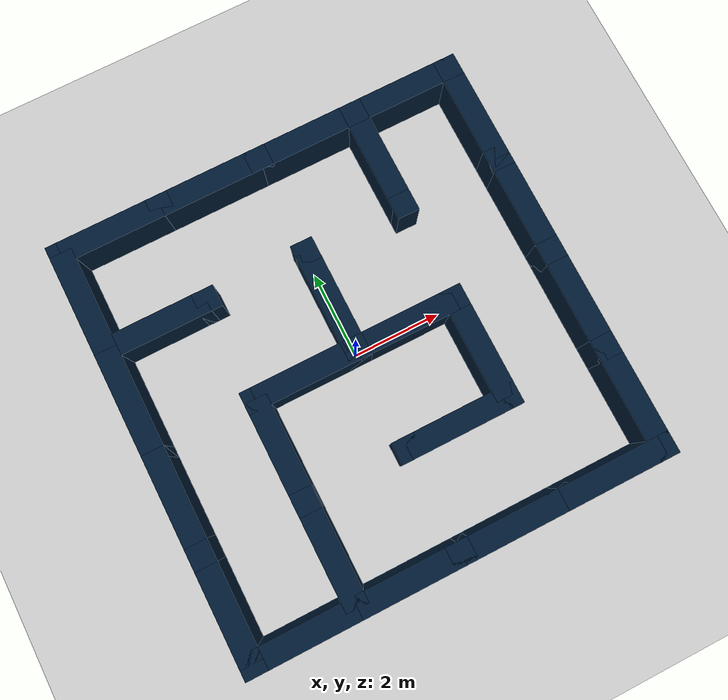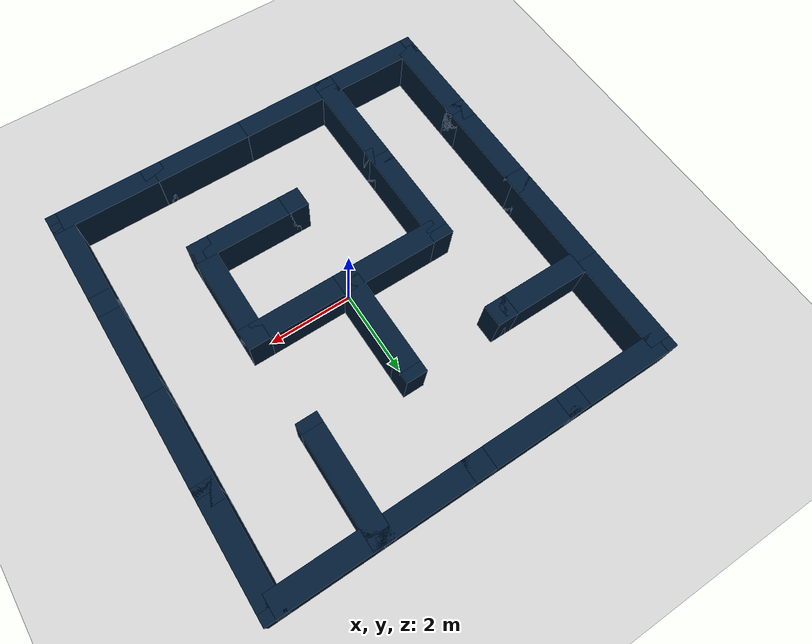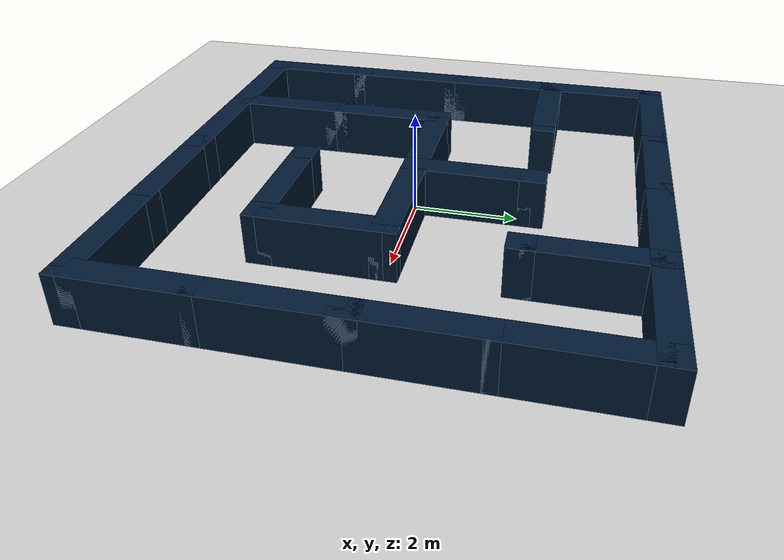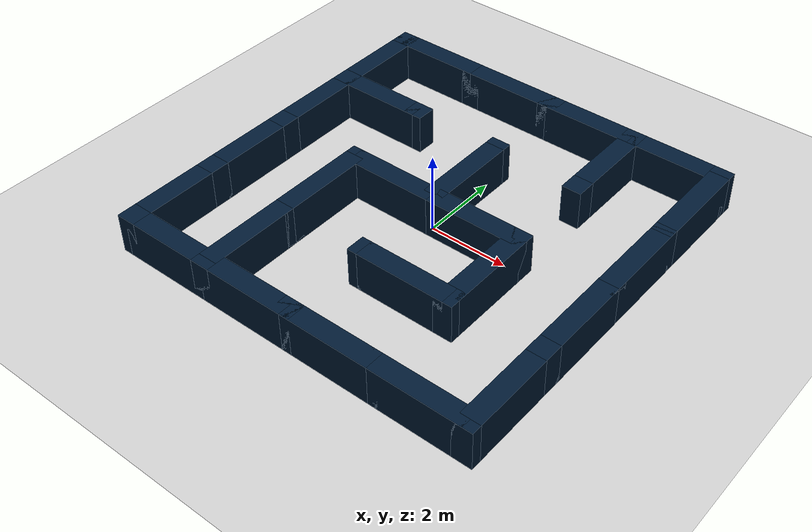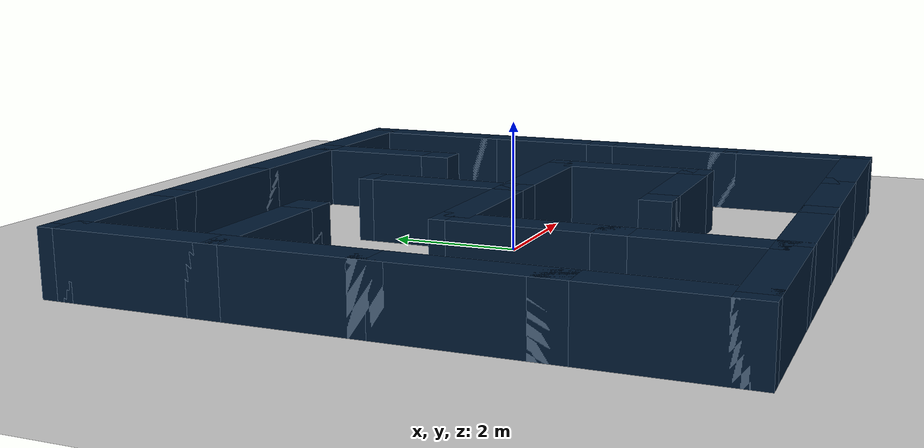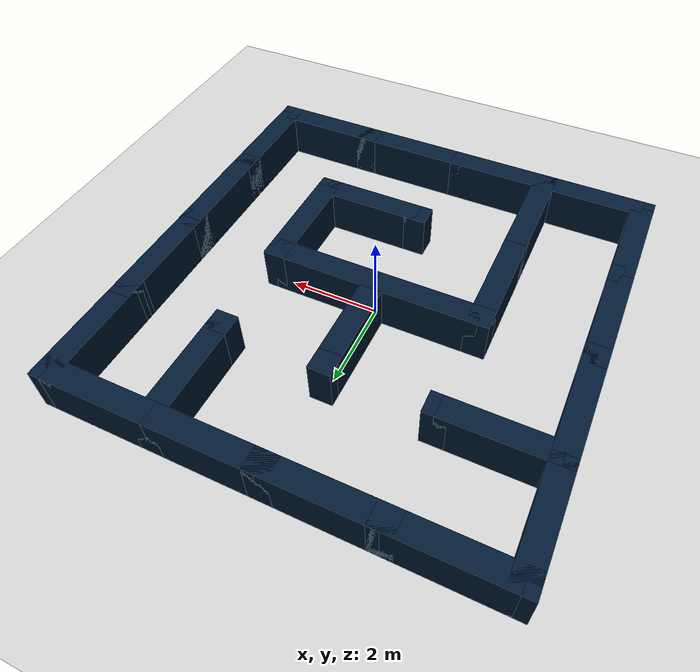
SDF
<?xml version="1.0"?>
<sdf version='1.8'>
    <world name='maze_4x4'>
        <physics name='1ms' type='ignored'>
            <max_step_size>0.003</max_step_size>
            <real_time_factor>1</real_time_factor>
            <real_time_update_rate>1000</real_time_update_rate>
        </physics>

        <!-- Plugins -->
        <plugin name="gz::sim::systems::Physics" filename="gz-sim-physics-system" />
        <plugin name="gz::sim::systems::UserCommands" filename="gz-sim-user-commands-system" />
        <plugin name="gz::sim::systems::SceneBroadcaster" filename="gz-sim-scene-broadcaster-system" />
        <plugin name="gz::sim::systems::Contact" filename="gz-sim-contact-system" />
        <plugin name="gz::sim::systems::Sensors" filename="gz-sim-sensors-system">
            <render_engine>ogre2</render_engine>
        </plugin>

        <gui fullscreen="0">
            <camera name="user_camera">
                <pose>0.0 0.0 13.80 0 1.20 0</pose>
                <view_controller>orbit</view_controller>
            </camera>
        </gui>

        <light name='sun' type='directional'>
            <cast_shadows>1</cast_shadows>
            <pose>0 0 40 0 -0 0</pose>
            <diffuse>0.8 0.8 0.8 1</diffuse>
            <specular>0.2 0.2 0.2 1</specular>
            <attenuation>
                <range>4000</range>
                <constant>0.90000000000000002</constant>
                <linear>0.01</linear>
                <quadratic>0.001</quadratic>
            </attenuation>
            <direction>-0.5 0.1 -0.9</direction>
            <spot>
                <inner_angle>0</inner_angle>
                <outer_angle>0</outer_angle>
                <falloff>0</falloff>
            </spot>
        </light>

        <gravity>0 0 -9.8</gravity>
        <magnetic_field>6e-06 2.3e-05 -4.2e-05</magnetic_field>
        <atmosphere type='adiabatic' />

        <scene>
            <ambient>0.4 0.4 0.4 1</ambient>
            <background>0.7 0.7 0.7 1</background>
            <shadows>1</shadows>
        </scene>

        <model name='ground_plane'>
            <static>1</static>
            <link name='link'>
                <collision name='collision'>
                    <geometry>
                        <plane>
                            <normal>0 0 1</normal>
                            <size>18.40 18.40</size>
                        </plane>
                    </geometry>
                    <surface>
                        <friction>
                            <ode />
                        </friction>
                        <bounce />
                        <contact />
                    </surface>
                </collision>
                <visual name='visual'>
                    <geometry>
                        <plane>
                            <normal>0 0 1</normal>
                            <size>18.40 18.40</size>
                        </plane>
                    </geometry>
                    <material>
                        <ambient>0.8 0.8 0.8 1</ambient>
                        <diffuse>0.8 0.8 0.8 1</diffuse>
                        <specular>0.8 0.8 0.8 1</specular>
                    </material>
                    <plugin name='__default__' filename='__default__' />
                </visual>
            </link>
            <plugin name='__default__' filename='__default__' />
            <pose>0 0 0 0 -0 0</pose>
        </model>

        <model name='obstacles'>
            <pose>0 0 0.50 0 0 0</pose>
            <static>true</static>
        <link name='corner_block_1'>
            <pose>-4.60 -4.60 0 0 0 0</pose>
            <static>true</static>
            <collision name='corner_block_1_collision'>
                <geometry>
                    <box>
                        <size>0.50 0.50 1.00</size>
                    </box>
                </geometry>
            </collision>
            <visual name='corner_block_1_visual'>
                <geometry>
                    <box>
                        <size>0.50 0.50 1.00</size>
                    </box>
                </geometry>
                <material>
                    <ambient>0.1 0.1 0.1 1</ambient>
                    <diffuse>0 0.1 0.2 1</diffuse>
                    <specular>0 0.01 0.05 1</specular>
                </material>
            </visual>
        </link>
        <link name='corner_block_2'>
            <pose>-2.30 -4.60 0 0 0 0</pose>
            <static>true</static>
            <collision name='corner_block_2_collision'>
                <geometry>
                    <box>
                        <size>0.50 0.50 1.00</size>
                    </box>
                </geometry>
            </collision>
            <visual name='corner_block_2_visual'>
                <geometry>
                    <box>
                        <size>0.50 0.50 1.00</size>
                    </box>
                </geometry>
                <material>
                    <ambient>0.1 0.1 0.1 1</ambient>
                    <diffuse>0 0.1 0.2 1</diffuse>
                    <specular>0 0.01 0.05 1</specular>
                </material>
            </visual>
        </link>
        <link name='corner_block_3'>
            <pose>0.00 -4.60 0 0 0 0</pose>
            <static>true</static>
            <collision name='corner_block_3_collision'>
                <geometry>
                    <box>
                        <size>0.50 0.50 1.00</size>
                    </box>
                </geometry>
            </collision>
            <visual name='corner_block_3_visual'>
                <geometry>
                    <box>
                        <size>0.50 0.50 1.00</size>
                    </box>
                </geometry>
                <material>
                    <ambient>0.1 0.1 0.1 1</ambient>
                    <diffuse>0 0.1 0.2 1</diffuse>
                    <specular>0 0.01 0.05 1</specular>
                </material>
            </visual>
        </link>
        <link name='corner_block_4'>
            <pose>2.30 -4.60 0 0 0 0</pose>
            <static>true</static>
            <collision name='corner_block_4_collision'>
                <geometry>
                    <box>
                        <size>0.50 0.50 1.00</size>
                    </box>
                </geometry>
            </collision>
            <visual name='corner_block_4_visual'>
                <geometry>
                    <box>
                        <size>0.50 0.50 1.00</size>
                    </box>
                </geometry>
                <material>
                    <ambient>0.1 0.1 0.1 1</ambient>
                    <diffuse>0 0.1 0.2 1</diffuse>
                    <specular>0 0.01 0.05 1</specular>
                </material>
            </visual>
        </link>
        <link name='corner_block_5'>
            <pose>4.60 -4.60 0 0 0 0</pose>
            <static>true</static>
            <collision name='corner_block_5_collision'>
                <geometry>
                    <box>
                        <size>0.50 0.50 1.00</size>
                    </box>
                </geometry>
            </collision>
            <visual name='corner_block_5_visual'>
                <geometry>
                    <box>
                        <size>0.50 0.50 1.00</size>
                    </box>
                </geometry>
                <material>
                    <ambient>0.1 0.1 0.1 1</ambient>
                    <diffuse>0 0.1 0.2 1</diffuse>
                    <specular>0 0.01 0.05 1</specular>
                </material>
            </visual>
        </link>
        <link name='corner_block_6'>
            <pose>-4.60 -2.30 0 0 0 0</pose>
            <static>true</static>
            <collision name='corner_block_6_collision'>
                <geometry>
                    <box>
                        <size>0.50 0.50 1.00</size>
                    </box>
                </geometry>
            </collision>
            <visual name='corner_block_6_visual'>
                <geometry>
                    <box>
                        <size>0.50 0.50 1.00</size>
                    </box>
                </geometry>
                <material>
                    <ambient>0.1 0.1 0.1 1</ambient>
                    <diffuse>0 0.1 0.2 1</diffuse>
                    <specular>0 0.01 0.05 1</specular>
                </material>
            </visual>
        </link>
        <link name='corner_block_7'>
            <pose>-2.30 -2.30 0 0 0 0</pose>
            <static>true</static>
            <collision name='corner_block_7_collision'>
                <geometry>
                    <box>
                        <size>0.50 0.50 1.00</size>
                    </box>
                </geometry>
            </collision>
            <visual name='corner_block_7_visual'>
                <geometry>
                    <box>
                        <size>0.50 0.50 1.00</size>
                    </box>
                </geometry>
                <material>
                    <ambient>0.1 0.1 0.1 1</ambient>
                    <diffuse>0 0.1 0.2 1</diffuse>
                    <specular>0 0.01 0.05 1</specular>
                </material>
            </visual>
        </link>
        <link name='corner_block_8'>
            <pose>0.00 -2.30 0 0 0 0</pose>
            <static>true</static>
            <collision name='corner_block_8_collision'>
                <geometry>
                    <box>
                        <size>0.50 0.50 1.00</size>
                    </box>
                </geometry>
            </collision>
            <visual name='corner_block_8_visual'>
                <geometry>
                    <box>
                        <size>0.50 0.50 1.00</size>
                    </box>
                </geometry>
                <material>
                    <ambient>0.1 0.1 0.1 1</ambient>
                    <diffuse>0 0.1 0.2 1</diffuse>
                    <specular>0 0.01 0.05 1</specular>
                </material>
            </visual>
        </link>
        <link name='corner_block_9'>
            <pose>2.30 -2.30 0 0 0 0</pose>
            <static>true</static>
            <collision name='corner_block_9_collision'>
                <geometry>
                    <box>
                        <size>0.50 0.50 1.00</size>
                    </box>
                </geometry>
            </collision>
            <visual name='corner_block_9_visual'>
                <geometry>
                    <box>
                        <size>0.50 0.50 1.00</size>
                    </box>
                </geometry>
                <material>
                    <ambient>0.1 0.1 0.1 1</ambient>
                    <diffuse>0 0.1 0.2 1</diffuse>
                    <specular>0 0.01 0.05 1</specular>
                </material>
            </visual>
        </link>
        <link name='corner_block_10'>
            <pose>4.60 -2.30 0 0 0 0</pose>
            <static>true</static>
            <collision name='corner_block_10_collision'>
                <geometry>
                    <box>
                        <size>0.50 0.50 1.00</size>
                    </box>
                </geometry>
            </collision>
            <visual name='corner_block_10_visual'>
                <geometry>
                    <box>
                        <size>0.50 0.50 1.00</size>
                    </box>
                </geometry>
                <material>
                    <ambient>0.1 0.1 0.1 1</ambient>
                    <diffuse>0 0.1 0.2 1</diffuse>
                    <specular>0 0.01 0.05 1</specular>
                </material>
            </visual>
        </link>
        <link name='corner_block_11'>
            <pose>-4.60 0.00 0 0 0 0</pose>
            <static>true</static>
            <collision name='corner_block_11_collision'>
                <geometry>
                    <box>
                        <size>0.50 0.50 1.00</size>
                    </box>
                </geometry>
            </collision>
            <visual name='corner_block_11_visual'>
                <geometry>
                    <box>
                        <size>0.50 0.50 1.00</size>
                    </box>
                </geometry>
                <material>
                    <ambient>0.1 0.1 0.1 1</ambient>
                    <diffuse>0 0.1 0.2 1</diffuse>
                    <specular>0 0.01 0.05 1</specular>
                </material>
            </visual>
        </link>
        <link name='corner_block_12'>
            <pose>-2.30 0.00 0 0 0 0</pose>
            <static>true</static>
            <collision name='corner_block_12_collision'>
                <geometry>
                    <box>
                        <size>0.50 0.50 1.00</size>
                    </box>
                </geometry>
            </collision>
            <visual name='corner_block_12_visual'>
                <geometry>
                    <box>
                        <size>0.50 0.50 1.00</size>
                    </box>
                </geometry>
                <material>
                    <ambient>0.1 0.1 0.1 1</ambient>
                    <diffuse>0 0.1 0.2 1</diffuse>
                    <specular>0 0.01 0.05 1</specular>
                </material>
            </visual>
        </link>
        <link name='corner_block_13'>
            <pose>0.00 0.00 0 0 0 0</pose>
            <static>true</static>
            <collision name='corner_block_13_collision'>
                <geometry>
                    <box>
                        <size>0.50 0.50 1.00</size>
                    </box>
                </geometry>
            </collision>
            <visual name='corner_block_13_visual'>
                <geometry>
                    <box>
                        <size>0.50 0.50 1.00</size>
                    </box>
                </geometry>
                <material>
                    <ambient>0.1 0.1 0.1 1</ambient>
                    <diffuse>0 0.1 0.2 1</diffuse>
                    <specular>0 0.01 0.05 1</specular>
                </material>
            </visual>
        </link>
        <link name='corner_block_14'>
            <pose>2.30 0.00 0 0 0 0</pose>
            <static>true</static>
            <collision name='corner_block_14_collision'>
                <geometry>
                    <box>
                        <size>0.50 0.50 1.00</size>
                    </box>
                </geometry>
            </collision>
            <visual name='corner_block_14_visual'>
                <geometry>
                    <box>
                        <size>0.50 0.50 1.00</size>
                    </box>
                </geometry>
                <material>
                    <ambient>0.1 0.1 0.1 1</ambient>
                    <diffuse>0 0.1 0.2 1</diffuse>
                    <specular>0 0.01 0.05 1</specular>
                </material>
            </visual>
        </link>
        <link name='corner_block_15'>
            <pose>4.60 0.00 0 0 0 0</pose>
            <static>true</static>
            <collision name='corner_block_15_collision'>
                <geometry>
                    <box>
                        <size>0.50 0.50 1.00</size>
                    </box>
                </geometry>
            </collision>
            <visual name='corner_block_15_visual'>
                <geometry>
                    <box>
                        <size>0.50 0.50 1.00</size>
                    </box>
                </geometry>
                <material>
                    <ambient>0.1 0.1 0.1 1</ambient>
                    <diffuse>0 0.1 0.2 1</diffuse>
                    <specular>0 0.01 0.05 1</specular>
                </material>
            </visual>
        </link>
        <link name='corner_block_16'>
            <pose>-4.60 2.30 0 0 0 0</pose>
            <static>true</static>
            <collision name='corner_block_16_collision'>
                <geometry>
                    <box>
                        <size>0.50 0.50 1.00</size>
                    </box>
                </geometry>
            </collision>
            <visual name='corner_block_16_visual'>
                <geometry>
                    <box>
                        <size>0.50 0.50 1.00</size>
                    </box>
                </geometry>
                <material>
                    <ambient>0.1 0.1 0.1 1</ambient>
                    <diffuse>0 0.1 0.2 1</diffuse>
                    <specular>0 0.01 0.05 1</specular>
                </material>
            </visual>
        </link>
        <link name='corner_block_17'>
            <pose>-2.30 2.30 0 0 0 0</pose>
            <static>true</static>
            <collision name='corner_block_17_collision'>
                <geometry>
                    <box>
                        <size>0.50 0.50 1.00</size>
                    </box>
                </geometry>
            </collision>
            <visual name='corner_block_17_visual'>
                <geometry>
                    <box>
                        <size>0.50 0.50 1.00</size>
                    </box>
                </geometry>
                <material>
                    <ambient>0.1 0.1 0.1 1</ambient>
                    <diffuse>0 0.1 0.2 1</diffuse>
                    <specular>0 0.01 0.05 1</specular>
                </material>
            </visual>
        </link>
        <link name='corner_block_18'>
            <pose>0.00 2.30 0 0 0 0</pose>
            <static>true</static>
            <collision name='corner_block_18_collision'>
                <geometry>
                    <box>
                        <size>0.50 0.50 1.00</size>
                    </box>
                </geometry>
            </collision>
            <visual name='corner_block_18_visual'>
                <geometry>
                    <box>
                        <size>0.50 0.50 1.00</size>
                    </box>
                </geometry>
                <material>
                    <ambient>0.1 0.1 0.1 1</ambient>
                    <diffuse>0 0.1 0.2 1</diffuse>
                    <specular>0 0.01 0.05 1</specular>
                </material>
            </visual>
        </link>
        <link name='corner_block_19'>
            <pose>2.30 2.30 0 0 0 0</pose>
            <static>true</static>
            <collision name='corner_block_19_collision'>
                <geometry>
                    <box>
                        <size>0.50 0.50 1.00</size>
                    </box>
                </geometry>
            </collision>
            <visual name='corner_block_19_visual'>
                <geometry>
                    <box>
                        <size>0.50 0.50 1.00</size>
                    </box>
                </geometry>
                <material>
                    <ambient>0.1 0.1 0.1 1</ambient>
                    <diffuse>0 0.1 0.2 1</diffuse>
                    <specular>0 0.01 0.05 1</specular>
                </material>
            </visual>
        </link>
        <link name='corner_block_20'>
            <pose>4.60 2.30 0 0 0 0</pose>
            <static>true</static>
            <collision name='corner_block_20_collision'>
                <geometry>
                    <box>
                        <size>0.50 0.50 1.00</size>
                    </box>
                </geometry>
            </collision>
            <visual name='corner_block_20_visual'>
                <geometry>
                    <box>
                        <size>0.50 0.50 1.00</size>
                    </box>
                </geometry>
                <material>
                    <ambient>0.1 0.1 0.1 1</ambient>
                    <diffuse>0 0.1 0.2 1</diffuse>
                    <specular>0 0.01 0.05 1</specular>
                </material>
            </visual>
        </link>
        <link name='corner_block_21'>
            <pose>-4.60 4.60 0 0 0 0</pose>
            <static>true</static>
            <collision name='corner_block_21_collision'>
                <geometry>
                    <box>
                        <size>0.50 0.50 1.00</size>
                    </box>
                </geometry>
            </collision>
            <visual name='corner_block_21_visual'>
                <geometry>
                    <box>
                        <size>0.50 0.50 1.00</size>
                    </box>
                </geometry>
                <material>
                    <ambient>0.1 0.1 0.1 1</ambient>
                    <diffuse>0 0.1 0.2 1</diffuse>
                    <specular>0 0.01 0.05 1</specular>
                </material>
            </visual>
        </link>
        <link name='corner_block_22'>
            <pose>-2.30 4.60 0 0 0 0</pose>
            <static>true</static>
            <collision name='corner_block_22_collision'>
                <geometry>
                    <box>
                        <size>0.50 0.50 1.00</size>
                    </box>
                </geometry>
            </collision>
            <visual name='corner_block_22_visual'>
                <geometry>
                    <box>
                        <size>0.50 0.50 1.00</size>
                    </box>
                </geometry>
                <material>
                    <ambient>0.1 0.1 0.1 1</ambient>
                    <diffuse>0 0.1 0.2 1</diffuse>
                    <specular>0 0.01 0.05 1</specular>
                </material>
            </visual>
        </link>
        <link name='corner_block_23'>
            <pose>0.00 4.60 0 0 0 0</pose>
            <static>true</static>
            <collision name='corner_block_23_collision'>
                <geometry>
                    <box>
                        <size>0.50 0.50 1.00</size>
                    </box>
                </geometry>
            </collision>
            <visual name='corner_block_23_visual'>
                <geometry>
                    <box>
                        <size>0.50 0.50 1.00</size>
                    </box>
                </geometry>
                <material>
                    <ambient>0.1 0.1 0.1 1</ambient>
                    <diffuse>0 0.1 0.2 1</diffuse>
                    <specular>0 0.01 0.05 1</specular>
                </material>
            </visual>
        </link>
        <link name='corner_block_24'>
            <pose>2.30 4.60 0 0 0 0</pose>
            <static>true</static>
            <collision name='corner_block_24_collision'>
                <geometry>
                    <box>
                        <size>0.50 0.50 1.00</size>
                    </box>
                </geometry>
            </collision>
            <visual name='corner_block_24_visual'>
                <geometry>
                    <box>
                        <size>0.50 0.50 1.00</size>
                    </box>
                </geometry>
                <material>
                    <ambient>0.1 0.1 0.1 1</ambient>
                    <diffuse>0 0.1 0.2 1</diffuse>
                    <specular>0 0.01 0.05 1</specular>
                </material>
            </visual>
        </link>
        <link name='corner_block_25'>
            <pose>4.60 4.60 0 0 0 0</pose>
            <static>true</static>
            <collision name='corner_block_25_collision'>
                <geometry>
                    <box>
                        <size>0.50 0.50 1.00</size>
                    </box>
                </geometry>
            </collision>
            <visual name='corner_block_25_visual'>
                <geometry>
                    <box>
                        <size>0.50 0.50 1.00</size>
                    </box>
                </geometry>
                <material>
                    <ambient>0.1 0.1 0.1 1</ambient>
                    <diffuse>0 0.1 0.2 1</diffuse>
                    <specular>0 0.01 0.05 1</specular>
                </material>
            </visual>
        </link>
        <link name='wall26'>
            <pose>-3.45 -4.60 0 0 0 0</pose>
            <static>true</static>
            <collision name='wall26_collision'>
                <geometry>
                    <box>
                        <size>2.30 0.50 1.00</size>
                    </box>
                </geometry>
            </collision>
            <visual name='wall26_visual'>
                <geometry>
                    <box>
                        <size>2.30 0.50 1.00</size>
                    </box>
                </geometry>
                <material>
                    <ambient>0.1 0.1 0.1 1</ambient>
                    <diffuse>0 0.1 0.2 1</diffuse>
                    <specular>0 0.01 0.05 1</specular>
                </material>
            </visual>
        </link>
        <link name='wall27'>
            <pose>-1.15 -4.60 0 0 0 0</pose>
            <static>true</static>
            <collision name='wall27_collision'>
                <geometry>
                    <box>
                        <size>2.30 0.50 1.00</size>
                    </box>
                </geometry>
            </collision>
            <visual name='wall27_visual'>
                <geometry>
                    <box>
                        <size>2.30 0.50 1.00</size>
                    </box>
                </geometry>
                <material>
                    <ambient>0.1 0.1 0.1 1</ambient>
                    <diffuse>0 0.1 0.2 1</diffuse>
                    <specular>0 0.01 0.05 1</specular>
                </material>
            </visual>
        </link>
        <link name='wall28'>
            <pose>1.15 -4.60 0 0 0 0</pose>
            <static>true</static>
            <collision name='wall28_collision'>
                <geometry>
                    <box>
                        <size>2.30 0.50 1.00</size>
                    </box>
                </geometry>
            </collision>
            <visual name='wall28_visual'>
                <geometry>
                    <box>
                        <size>2.30 0.50 1.00</size>
                    </box>
                </geometry>
                <material>
                    <ambient>0.1 0.1 0.1 1</ambient>
                    <diffuse>0 0.1 0.2 1</diffuse>
                    <specular>0 0.01 0.05 1</specular>
                </material>
            </visual>
        </link>
        <link name='wall29'>
            <pose>3.45 -4.60 0 0 0 0</pose>
            <static>true</static>
            <collision name='wall29_collision'>
                <geometry>
                    <box>
                        <size>2.30 0.50 1.00</size>
                    </box>
                </geometry>
            </collision>
            <visual name='wall29_visual'>
                <geometry>
                    <box>
                        <size>2.30 0.50 1.00</size>
                    </box>
                </geometry>
                <material>
                    <ambient>0.1 0.1 0.1 1</ambient>
                    <diffuse>0 0.1 0.2 1</diffuse>
                    <specular>0 0.01 0.05 1</specular>
                </material>
            </visual>
        </link>
        <link name='wall30'>
            <pose>1.15 -2.30 0 0 0 0</pose>
            <static>true</static>
            <collision name='wall30_collision'>
                <geometry>
                    <box>
                        <size>2.30 0.50 1.00</size>
                    </box>
                </geometry>
            </collision>
            <visual name='wall30_visual'>
                <geometry>
                    <box>
                        <size>2.30 0.50 1.00</size>
                    </box>
                </geometry>
                <material>
                    <ambient>0.1 0.1 0.1 1</ambient>
                    <diffuse>0 0.1 0.2 1</diffuse>
                    <specular>0 0.01 0.05 1</specular>
                </material>
            </visual>
        </link>
        <link name='wall31'>
            <pose>-1.15 0.00 0 0 0 0</pose>
            <static>true</static>
            <collision name='wall31_collision'>
                <geometry>
                    <box>
                        <size>2.30 0.50 1.00</size>
                    </box>
                </geometry>
            </collision>
            <visual name='wall31_visual'>
                <geometry>
                    <box>
                        <size>2.30 0.50 1.00</size>
                    </box>
                </geometry>
                <material>
                    <ambient>0.1 0.1 0.1 1</ambient>
                    <diffuse>0 0.1 0.2 1</diffuse>
                    <specular>0 0.01 0.05 1</specular>
                </material>
            </visual>
        </link>
        <link name='wall32'>
            <pose>1.15 0.00 0 0 0 0</pose>
            <static>true</static>
            <collision name='wall32_collision'>
                <geometry>
                    <box>
                        <size>2.30 0.50 1.00</size>
                    </box>
                </geometry>
            </collision>
            <visual name='wall32_visual'>
                <geometry>
                    <box>
                        <size>2.30 0.50 1.00</size>
                    </box>
                </geometry>
                <material>
                    <ambient>0.1 0.1 0.1 1</ambient>
                    <diffuse>0 0.1 0.2 1</diffuse>
                    <specular>0 0.01 0.05 1</specular>
                </material>
            </visual>
        </link>
        <link name='wall33'>
            <pose>-3.45 2.30 0 0 0 0</pose>
            <static>true</static>
            <collision name='wall33_collision'>
                <geometry>
                    <box>
                        <size>2.30 0.50 1.00</size>
                    </box>
                </geometry>
            </collision>
            <visual name='wall33_visual'>
                <geometry>
                    <box>
                        <size>2.30 0.50 1.00</size>
                    </box>
                </geometry>
                <material>
                    <ambient>0.1 0.1 0.1 1</ambient>
                    <diffuse>0 0.1 0.2 1</diffuse>
                    <specular>0 0.01 0.05 1</specular>
                </material>
            </visual>
        </link>
        <link name='wall34'>
            <pose>-3.45 4.60 0 0 0 0</pose>
            <static>true</static>
            <collision name='wall34_collision'>
                <geometry>
                    <box>
                        <size>2.30 0.50 1.00</size>
                    </box>
                </geometry>
            </collision>
            <visual name='wall34_visual'>
                <geometry>
                    <box>
                        <size>2.30 0.50 1.00</size>
                    </box>
                </geometry>
                <material>
                    <ambient>0.1 0.1 0.1 1</ambient>
                    <diffuse>0 0.1 0.2 1</diffuse>
                    <specular>0 0.01 0.05 1</specular>
                </material>
            </visual>
        </link>
        <link name='wall35'>
            <pose>-1.15 4.60 0 0 0 0</pose>
            <static>true</static>
            <collision name='wall35_collision'>
                <geometry>
                    <box>
                        <size>2.30 0.50 1.00</size>
                    </box>
                </geometry>
            </collision>
            <visual name='wall35_visual'>
                <geometry>
                    <box>
                        <size>2.30 0.50 1.00</size>
                    </box>
                </geometry>
                <material>
                    <ambient>0.1 0.1 0.1 1</ambient>
                    <diffuse>0 0.1 0.2 1</diffuse>
                    <specular>0 0.01 0.05 1</specular>
                </material>
            </visual>
        </link>
        <link name='wall36'>
            <pose>1.15 4.60 0 0 0 0</pose>
            <static>true</static>
            <collision name='wall36_collision'>
                <geometry>
                    <box>
                        <size>2.30 0.50 1.00</size>
                    </box>
                </geometry>
            </collision>
            <visual name='wall36_visual'>
                <geometry>
                    <box>
                        <size>2.30 0.50 1.00</size>
                    </box>
                </geometry>
                <material>
                    <ambient>0.1 0.1 0.1 1</ambient>
                    <diffuse>0 0.1 0.2 1</diffuse>
                    <specular>0 0.01 0.05 1</specular>
                </material>
            </visual>
        </link>
        <link name='wall37'>
            <pose>3.45 4.60 0 0 0 0</pose>
            <static>true</static>
            <collision name='wall37_collision'>
                <geometry>
                    <box>
                        <size>2.30 0.50 1.00</size>
                    </box>
                </geometry>
            </collision>
            <visual name='wall37_visual'>
                <geometry>
                    <box>
                        <size>2.30 0.50 1.00</size>
                    </box>
                </geometry>
                <material>
                    <ambient>0.1 0.1 0.1 1</ambient>
                    <diffuse>0 0.1 0.2 1</diffuse>
                    <specular>0 0.01 0.05 1</specular>
                </material>
            </visual>
        </link>
        <link name='wall38'>
            <pose>-4.60 -3.45 0 0 0 0</pose>
            <static>true</static>
            <collision name='wall38_collision'>
                <geometry>
                    <box>
                        <size>0.50 2.30 1.00</size>
                    </box>
                </geometry>
            </collision>
            <visual name='wall38_visual'>
                <geometry>
                    <box>
                        <size>0.50 2.30 1.00</size>
                    </box>
                </geometry>
                <material>
                    <ambient>0.1 0.1 0.1 1</ambient>
                    <diffuse>0 0.1 0.2 1</diffuse>
                    <specular>0 0.01 0.05 1</specular>
                </material>
            </visual>
        </link>
        <link name='wall39'>
            <pose>-2.30 -3.45 0 0 0 0</pose>
            <static>true</static>
            <collision name='wall39_collision'>
                <geometry>
                    <box>
                        <size>0.50 2.30 1.00</size>
                    </box>
                </geometry>
            </collision>
            <visual name='wall39_visual'>
                <geometry>
                    <box>
                        <size>0.50 2.30 1.00</size>
                    </box>
                </geometry>
                <material>
                    <ambient>0.1 0.1 0.1 1</ambient>
                    <diffuse>0 0.1 0.2 1</diffuse>
                    <specular>0 0.01 0.05 1</specular>
                </material>
            </visual>
        </link>
        <link name='wall40'>
            <pose>4.60 -3.45 0 0 0 0</pose>
            <static>true</static>
            <collision name='wall40_collision'>
                <geometry>
                    <box>
                        <size>0.50 2.30 1.00</size>
                    </box>
                </geometry>
            </collision>
            <visual name='wall40_visual'>
                <geometry>
                    <box>
                        <size>0.50 2.30 1.00</size>
                    </box>
                </geometry>
                <material>
                    <ambient>0.1 0.1 0.1 1</ambient>
                    <diffuse>0 0.1 0.2 1</diffuse>
                    <specular>0 0.01 0.05 1</specular>
                </material>
            </visual>
        </link>
        <link name='wall41'>
            <pose>-4.60 -1.15 0 0 0 0</pose>
            <static>true</static>
            <collision name='wall41_collision'>
                <geometry>
                    <box>
                        <size>0.50 2.30 1.00</size>
                    </box>
                </geometry>
            </collision>
            <visual name='wall41_visual'>
                <geometry>
                    <box>
                        <size>0.50 2.30 1.00</size>
                    </box>
                </geometry>
                <material>
                    <ambient>0.1 0.1 0.1 1</ambient>
                    <diffuse>0 0.1 0.2 1</diffuse>
                    <specular>0 0.01 0.05 1</specular>
                </material>
            </visual>
        </link>
        <link name='wall42'>
            <pose>-2.30 -1.15 0 0 0 0</pose>
            <static>true</static>
            <collision name='wall42_collision'>
                <geometry>
                    <box>
                        <size>0.50 2.30 1.00</size>
                    </box>
                </geometry>
            </collision>
            <visual name='wall42_visual'>
                <geometry>
                    <box>
                        <size>0.50 2.30 1.00</size>
                    </box>
                </geometry>
                <material>
                    <ambient>0.1 0.1 0.1 1</ambient>
                    <diffuse>0 0.1 0.2 1</diffuse>
                    <specular>0 0.01 0.05 1</specular>
                </material>
            </visual>
        </link>
        <link name='wall43'>
            <pose>2.30 -1.15 0 0 0 0</pose>
            <static>true</static>
            <collision name='wall43_collision'>
                <geometry>
                    <box>
                        <size>0.50 2.30 1.00</size>
                    </box>
                </geometry>
            </collision>
            <visual name='wall43_visual'>
                <geometry>
                    <box>
                        <size>0.50 2.30 1.00</size>
                    </box>
                </geometry>
                <material>
                    <ambient>0.1 0.1 0.1 1</ambient>
                    <diffuse>0 0.1 0.2 1</diffuse>
                    <specular>0 0.01 0.05 1</specular>
                </material>
            </visual>
        </link>
        <link name='wall44'>
            <pose>4.60 -1.15 0 0 0 0</pose>
            <static>true</static>
            <collision name='wall44_collision'>
                <geometry>
                    <box>
                        <size>0.50 2.30 1.00</size>
                    </box>
                </geometry>
            </collision>
            <visual name='wall44_visual'>
                <geometry>
                    <box>
                        <size>0.50 2.30 1.00</size>
                    </box>
                </geometry>
                <material>
                    <ambient>0.1 0.1 0.1 1</ambient>
                    <diffuse>0 0.1 0.2 1</diffuse>
                    <specular>0 0.01 0.05 1</specular>
                </material>
            </visual>
        </link>
        <link name='wall45'>
            <pose>-4.60 1.15 0 0 0 0</pose>
            <static>true</static>
            <collision name='wall45_collision'>
                <geometry>
                    <box>
                        <size>0.50 2.30 1.00</size>
                    </box>
                </geometry>
            </collision>
            <visual name='wall45_visual'>
                <geometry>
                    <box>
                        <size>0.50 2.30 1.00</size>
                    </box>
                </geometry>
                <material>
                    <ambient>0.1 0.1 0.1 1</ambient>
                    <diffuse>0 0.1 0.2 1</diffuse>
                    <specular>0 0.01 0.05 1</specular>
                </material>
            </visual>
        </link>
        <link name='wall46'>
            <pose>0.00 1.15 0 0 0 0</pose>
            <static>true</static>
            <collision name='wall46_collision'>
                <geometry>
                    <box>
                        <size>0.50 2.30 1.00</size>
                    </box>
                </geometry>
            </collision>
            <visual name='wall46_visual'>
                <geometry>
                    <box>
                        <size>0.50 2.30 1.00</size>
                    </box>
                </geometry>
                <material>
                    <ambient>0.1 0.1 0.1 1</ambient>
                    <diffuse>0 0.1 0.2 1</diffuse>
                    <specular>0 0.01 0.05 1</specular>
                </material>
            </visual>
        </link>
        <link name='wall47'>
            <pose>4.60 1.15 0 0 0 0</pose>
            <static>true</static>
            <collision name='wall47_collision'>
                <geometry>
                    <box>
                        <size>0.50 2.30 1.00</size>
                    </box>
                </geometry>
            </collision>
            <visual name='wall47_visual'>
                <geometry>
                    <box>
                        <size>0.50 2.30 1.00</size>
                    </box>
                </geometry>
                <material>
                    <ambient>0.1 0.1 0.1 1</ambient>
                    <diffuse>0 0.1 0.2 1</diffuse>
                    <specular>0 0.01 0.05 1</specular>
                </material>
            </visual>
        </link>
        <link name='wall48'>
            <pose>-4.60 3.45 0 0 0 0</pose>
            <static>true</static>
            <collision name='wall48_collision'>
                <geometry>
                    <box>
                        <size>0.50 2.30 1.00</size>
                    </box>
                </geometry>
            </collision>
            <visual name='wall48_visual'>
                <geometry>
                    <box>
                        <size>0.50 2.30 1.00</size>
                    </box>
                </geometry>
                <material>
                    <ambient>0.1 0.1 0.1 1</ambient>
                    <diffuse>0 0.1 0.2 1</diffuse>
                    <specular>0 0.01 0.05 1</specular>
                </material>
            </visual>
        </link>
        <link name='wall49'>
            <pose>2.30 3.45 0 0 0 0</pose>
            <static>true</static>
            <collision name='wall49_collision'>
                <geometry>
                    <box>
                        <size>0.50 2.30 1.00</size>
                    </box>
                </geometry>
            </collision>
            <visual name='wall49_visual'>
                <geometry>
                    <box>
                        <size>0.50 2.30 1.00</size>
                    </box>
                </geometry>
                <material>
                    <ambient>0.1 0.1 0.1 1</ambient>
                    <diffuse>0 0.1 0.2 1</diffuse>
                    <specular>0 0.01 0.05 1</specular>
                </material>
            </visual>
        </link>
        <link name='wall50'>
            <pose>4.60 3.45 0 0 0 0</pose>
            <static>true</static>
            <collision name='wall50_collision'>
                <geometry>
                    <box>
                        <size>0.50 2.30 1.00</size>
                    </box>
                </geometry>
            </collision>
            <visual name='wall50_visual'>
                <geometry>
                    <box>
                        <size>0.50 2.30 1.00</size>
                    </box>
                </geometry>
                <material>
                    <ambient>0.1 0.1 0.1 1</ambient>
                    <diffuse>0 0.1 0.2 1</diffuse>
                    <specular>0 0.01 0.05 1</specular>
                </material>
            </visual>
        </link>
    </model>
</world>
</sdf>
